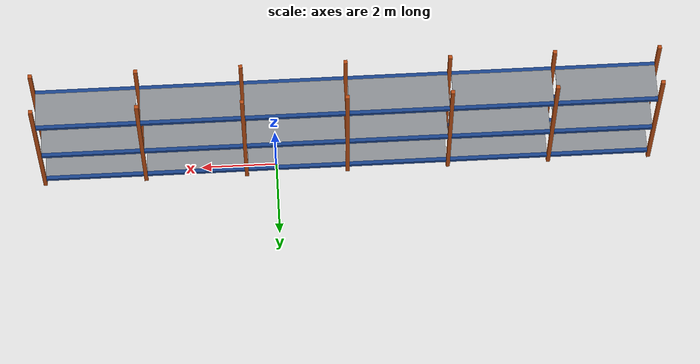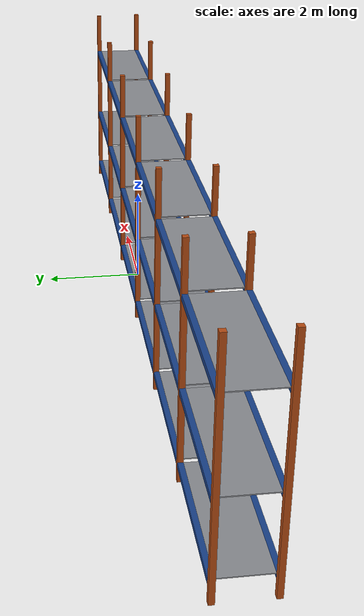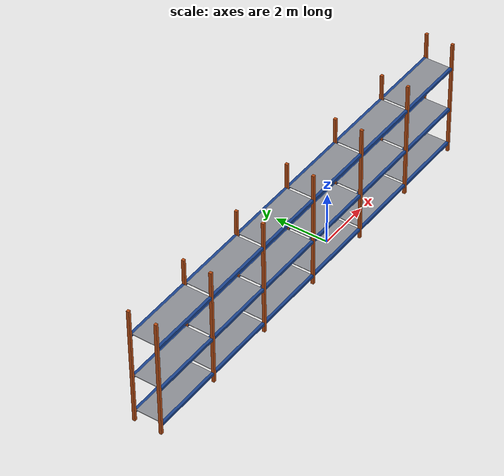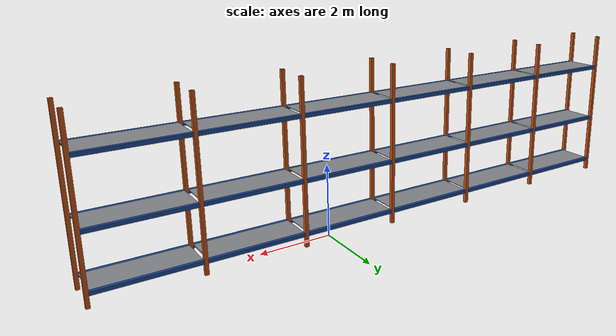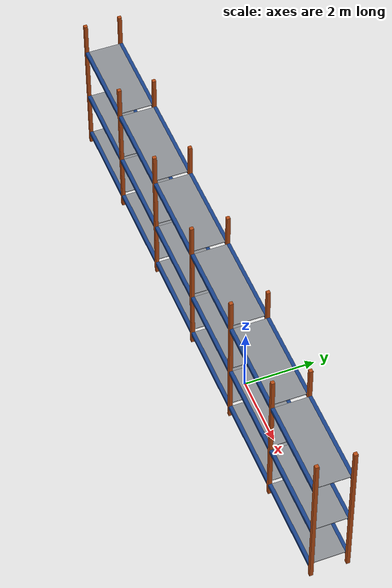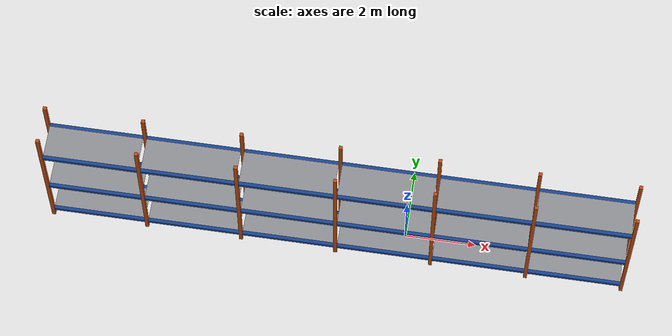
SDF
<sdf version="1.9">
 <world name="warehouse">
  <model name="rack_C">
   <static>true</static>
   <link name="frame">
    <visual name="up_0_f_v">
     <pose>-10 -0.75 2.25 0 0 0</pose>
     <geometry><box><size>0.1 0.1 4.5</size></box></geometry>
     <material>
      <ambient>0.36 0.15 0.04 1</ambient>
      <diffuse>0.72 0.3 0.08 1</diffuse>
      <specular>0.05 0.05 0.05 1</specular>
      <pbr><metal><metalness>0.0</metalness><roughness>0.9</roughness></metal></pbr>
     </material>
    </visual>
    <collision name="up_0_f_c">
     <pose>-10 -0.75 2.25 0 0 0</pose>
     <geometry><box><size>0.1 0.1 4.5</size></box></geometry>
    </collision>
    <visual name="up_0_b_v">
     <pose>-10 0.25 2.25 0 0 0</pose>
     <geometry><box><size>0.1 0.1 4.5</size></box></geometry>
     <material>
      <ambient>0.36 0.15 0.04 1</ambient>
      <diffuse>0.72 0.3 0.08 1</diffuse>
      <specular>0.05 0.05 0.05 1</specular>
      <pbr><metal><metalness>0.0</metalness><roughness>0.9</roughness></metal></pbr>
     </material>
    </visual>
    <collision name="up_0_b_c">
     <pose>-10 0.25 2.25 0 0 0</pose>
     <geometry><box><size>0.1 0.1 4.5</size></box></geometry>
    </collision>
    <visual name="up_1_f_v">
     <pose>-7.3 -0.75 2.25 0 0 0</pose>
     <geometry><box><size>0.1 0.1 4.5</size></box></geometry>
     <material>
      <ambient>0.36 0.15 0.04 1</ambient>
      <diffuse>0.72 0.3 0.08 1</diffuse>
      <specular>0.05 0.05 0.05 1</specular>
      <pbr><metal><metalness>0.0</metalness><roughness>0.9</roughness></metal></pbr>
     </material>
    </visual>
    <collision name="up_1_f_c">
     <pose>-7.3 -0.75 2.25 0 0 0</pose>
     <geometry><box><size>0.1 0.1 4.5</size></box></geometry>
    </collision>
    <visual name="up_1_b_v">
     <pose>-7.3 0.25 2.25 0 0 0</pose>
     <geometry><box><size>0.1 0.1 4.5</size></box></geometry>
     <material>
      <ambient>0.36 0.15 0.04 1</ambient>
      <diffuse>0.72 0.3 0.08 1</diffuse>
      <specular>0.05 0.05 0.05 1</specular>
      <pbr><metal><metalness>0.0</metalness><roughness>0.9</roughness></metal></pbr>
     </material>
    </visual>
    <collision name="up_1_b_c">
     <pose>-7.3 0.25 2.25 0 0 0</pose>
     <geometry><box><size>0.1 0.1 4.5</size></box></geometry>
    </collision>
    <visual name="up_2_f_v">
     <pose>-4.6 -0.75 2.25 0 0 0</pose>
     <geometry><box><size>0.1 0.1 4.5</size></box></geometry>
     <material>
      <ambient>0.36 0.15 0.04 1</ambient>
      <diffuse>0.72 0.3 0.08 1</diffuse>
      <specular>0.05 0.05 0.05 1</specular>
      <pbr><metal><metalness>0.0</metalness><roughness>0.9</roughness></metal></pbr>
     </material>
    </visual>
    <collision name="up_2_f_c">
     <pose>-4.6 -0.75 2.25 0 0 0</pose>
     <geometry><box><size>0.1 0.1 4.5</size></box></geometry>
    </collision>
    <visual name="up_2_b_v">
     <pose>-4.6 0.25 2.25 0 0 0</pose>
     <geometry><box><size>0.1 0.1 4.5</size></box></geometry>
     <material>
      <ambient>0.36 0.15 0.04 1</ambient>
      <diffuse>0.72 0.3 0.08 1</diffuse>
      <specular>0.05 0.05 0.05 1</specular>
      <pbr><metal><metalness>0.0</metalness><roughness>0.9</roughness></metal></pbr>
     </material>
    </visual>
    <collision name="up_2_b_c">
     <pose>-4.6 0.25 2.25 0 0 0</pose>
     <geometry><box><size>0.1 0.1 4.5</size></box></geometry>
    </collision>
    <visual name="up_3_f_v">
     <pose>-1.9 -0.75 2.25 0 0 0</pose>
     <geometry><box><size>0.1 0.1 4.5</size></box></geometry>
     <material>
      <ambient>0.36 0.15 0.04 1</ambient>
      <diffuse>0.72 0.3 0.08 1</diffuse>
      <specular>0.05 0.05 0.05 1</specular>
      <pbr><metal><metalness>0.0</metalness><roughness>0.9</roughness></metal></pbr>
     </material>
    </visual>
    <collision name="up_3_f_c">
     <pose>-1.9 -0.75 2.25 0 0 0</pose>
     <geometry><box><size>0.1 0.1 4.5</size></box></geometry>
    </collision>
    <visual name="up_3_b_v">
     <pose>-1.9 0.25 2.25 0 0 0</pose>
     <geometry><box><size>0.1 0.1 4.5</size></box></geometry>
     <material>
      <ambient>0.36 0.15 0.04 1</ambient>
      <diffuse>0.72 0.3 0.08 1</diffuse>
      <specular>0.05 0.05 0.05 1</specular>
      <pbr><metal><metalness>0.0</metalness><roughness>0.9</roughness></metal></pbr>
     </material>
    </visual>
    <collision name="up_3_b_c">
     <pose>-1.9 0.25 2.25 0 0 0</pose>
     <geometry><box><size>0.1 0.1 4.5</size></box></geometry>
    </collision>
    <visual name="up_4_f_v">
     <pose>0.8 -0.75 2.25 0 0 0</pose>
     <geometry><box><size>0.1 0.1 4.5</size></box></geometry>
     <material>
      <ambient>0.36 0.15 0.04 1</ambient>
      <diffuse>0.72 0.3 0.08 1</diffuse>
      <specular>0.05 0.05 0.05 1</specular>
      <pbr><metal><metalness>0.0</metalness><roughness>0.9</roughness></metal></pbr>
     </material>
    </visual>
    <collision name="up_4_f_c">
     <pose>0.8 -0.75 2.25 0 0 0</pose>
     <geometry><box><size>0.1 0.1 4.5</size></box></geometry>
    </collision>
    <visual name="up_4_b_v">
     <pose>0.8 0.25 2.25 0 0 0</pose>
     <geometry><box><size>0.1 0.1 4.5</size></box></geometry>
     <material>
      <ambient>0.36 0.15 0.04 1</ambient>
      <diffuse>0.72 0.3 0.08 1</diffuse>
      <specular>0.05 0.05 0.05 1</specular>
      <pbr><metal><metalness>0.0</metalness><roughness>0.9</roughness></metal></pbr>
     </material>
    </visual>
    <collision name="up_4_b_c">
     <pose>0.8 0.25 2.25 0 0 0</pose>
     <geometry><box><size>0.1 0.1 4.5</size></box></geometry>
    </collision>
    <visual name="up_5_f_v">
     <pose>3.5 -0.75 2.25 0 0 0</pose>
     <geometry><box><size>0.1 0.1 4.5</size></box></geometry>
     <material>
      <ambient>0.36 0.15 0.04 1</ambient>
      <diffuse>0.72 0.3 0.08 1</diffuse>
      <specular>0.05 0.05 0.05 1</specular>
      <pbr><metal><metalness>0.0</metalness><roughness>0.9</roughness></metal></pbr>
     </material>
    </visual>
    <collision name="up_5_f_c">
     <pose>3.5 -0.75 2.25 0 0 0</pose>
     <geometry><box><size>0.1 0.1 4.5</size></box></geometry>
    </collision>
    <visual name="up_5_b_v">
     <pose>3.5 0.25 2.25 0 0 0</pose>
     <geometry><box><size>0.1 0.1 4.5</size></box></geometry>
     <material>
      <ambient>0.36 0.15 0.04 1</ambient>
      <diffuse>0.72 0.3 0.08 1</diffuse>
      <specular>0.05 0.05 0.05 1</specular>
      <pbr><metal><metalness>0.0</metalness><roughness>0.9</roughness></metal></pbr>
     </material>
    </visual>
    <collision name="up_5_b_c">
     <pose>3.5 0.25 2.25 0 0 0</pose>
     <geometry><box><size>0.1 0.1 4.5</size></box></geometry>
    </collision>
    <visual name="up_6_f_v">
     <pose>6.2 -0.75 2.25 0 0 0</pose>
     <geometry><box><size>0.1 0.1 4.5</size></box></geometry>
     <material>
      <ambient>0.36 0.15 0.04 1</ambient>
      <diffuse>0.72 0.3 0.08 1</diffuse>
      <specular>0.05 0.05 0.05 1</specular>
      <pbr><metal><metalness>0.0</metalness><roughness>0.9</roughness></metal></pbr>
     </material>
    </visual>
    <collision name="up_6_f_c">
     <pose>6.2 -0.75 2.25 0 0 0</pose>
     <geometry><box><size>0.1 0.1 4.5</size></box></geometry>
    </collision>
    <visual name="up_6_b_v">
     <pose>6.2 0.25 2.25 0 0 0</pose>
     <geometry><box><size>0.1 0.1 4.5</size></box></geometry>
     <material>
      <ambient>0.36 0.15 0.04 1</ambient>
      <diffuse>0.72 0.3 0.08 1</diffuse>
      <specular>0.05 0.05 0.05 1</specular>
      <pbr><metal><metalness>0.0</metalness><roughness>0.9</roughness></metal></pbr>
     </material>
    </visual>
    <collision name="up_6_b_c">
     <pose>6.2 0.25 2.25 0 0 0</pose>
     <geometry><box><size>0.1 0.1 4.5</size></box></geometry>
    </collision>
    <visual name="beam_0_0_f_v">
     <pose>-8.65 -0.75 0.35 0 0 0</pose>
     <geometry><box><size>2.6 0.1 0.1</size></box></geometry>
     <material>
      <ambient>0.05 0.13 0.275 1</ambient>
      <diffuse>0.1 0.26 0.55 1</diffuse>
      <specular>0.05 0.05 0.05 1</specular>
      <pbr><metal><metalness>0.0</metalness><roughness>0.9</roughness></metal></pbr>
     </material>
    </visual>
    <collision name="beam_0_0_f_c">
     <pose>-8.65 -0.75 0.35 0 0 0</pose>
     <geometry><box><size>2.6 0.1 0.1</size></box></geometry>
    </collision>
    <visual name="beam_0_0_b_v">
     <pose>-8.65 0.25 0.35 0 0 0</pose>
     <geometry><box><size>2.6 0.1 0.1</size></box></geometry>
     <material>
      <ambient>0.05 0.13 0.275 1</ambient>
      <diffuse>0.1 0.26 0.55 1</diffuse>
      <specular>0.05 0.05 0.05 1</specular>
      <pbr><metal><metalness>0.0</metalness><roughness>0.9</roughness></metal></pbr>
     </material>
    </visual>
    <collision name="beam_0_0_b_c">
     <pose>-8.65 0.25 0.35 0 0 0</pose>
     <geometry><box><size>2.6 0.1 0.1</size></box></geometry>
    </collision>
    <visual name="deck_0_0_v">
     <pose>-8.65 -0.25 0.39 0 0 0</pose>
     <geometry><box><size>2.6 0.9 0.02</size></box></geometry>
     <material>
      <ambient>0.275 0.28 0.29 1</ambient>
      <diffuse>0.55 0.56 0.58 1</diffuse>
      <specular>0.05 0.05 0.05 1</specular>
      <pbr><metal><metalness>0.0</metalness><roughness>0.9</roughness></metal></pbr>
     </material>
    </visual>
    <collision name="deck_0_0_c">
     <pose>-8.65 -0.25 0.39 0 0 0</pose>
     <geometry><box><size>2.6 0.9 0.02</size></box></geometry>
    </collision>
    <visual name="beam_0_1_f_v">
     <pose>-5.95 -0.75 0.35 0 0 0</pose>
     <geometry><box><size>2.6 0.1 0.1</size></box></geometry>
     <material>
      <ambient>0.05 0.13 0.275 1</ambient>
      <diffuse>0.1 0.26 0.55 1</diffuse>
      <specular>0.05 0.05 0.05 1</specular>
      <pbr><metal><metalness>0.0</metalness><roughness>0.9</roughness></metal></pbr>
     </material>
    </visual>
    <collision name="beam_0_1_f_c">
     <pose>-5.95 -0.75 0.35 0 0 0</pose>
     <geometry><box><size>2.6 0.1 0.1</size></box></geometry>
    </collision>
    <visual name="beam_0_1_b_v">
     <pose>-5.95 0.25 0.35 0 0 0</pose>
     <geometry><box><size>2.6 0.1 0.1</size></box></geometry>
     <material>
      <ambient>0.05 0.13 0.275 1</ambient>
      <diffuse>0.1 0.26 0.55 1</diffuse>
      <specular>0.05 0.05 0.05 1</specular>
      <pbr><metal><metalness>0.0</metalness><roughness>0.9</roughness></metal></pbr>
     </material>
    </visual>
    <collision name="beam_0_1_b_c">
     <pose>-5.95 0.25 0.35 0 0 0</pose>
     <geometry><box><size>2.6 0.1 0.1</size></box></geometry>
    </collision>
    <visual name="deck_0_1_v">
     <pose>-5.95 -0.25 0.39 0 0 0</pose>
     <geometry><box><size>2.6 0.9 0.02</size></box></geometry>
     <material>
      <ambient>0.275 0.28 0.29 1</ambient>
      <diffuse>0.55 0.56 0.58 1</diffuse>
      <specular>0.05 0.05 0.05 1</specular>
      <pbr><metal><metalness>0.0</metalness><roughness>0.9</roughness></metal></pbr>
     </material>
    </visual>
    <collision name="deck_0_1_c">
     <pose>-5.95 -0.25 0.39 0 0 0</pose>
     <geometry><box><size>2.6 0.9 0.02</size></box></geometry>
    </collision>
    <visual name="beam_0_2_f_v">
     <pose>-3.25 -0.75 0.35 0 0 0</pose>
     <geometry><box><size>2.6 0.1 0.1</size></box></geometry>
     <material>
      <ambient>0.05 0.13 0.275 1</ambient>
      <diffuse>0.1 0.26 0.55 1</diffuse>
      <specular>0.05 0.05 0.05 1</specular>
      <pbr><metal><metalness>0.0</metalness><roughness>0.9</roughness></metal></pbr>
     </material>
    </visual>
    <collision name="beam_0_2_f_c">
     <pose>-3.25 -0.75 0.35 0 0 0</pose>
     <geometry><box><size>2.6 0.1 0.1</size></box></geometry>
    </collision>
    <visual name="beam_0_2_b_v">
     <pose>-3.25 0.25 0.35 0 0 0</pose>
     <geometry><box><size>2.6 0.1 0.1</size></box></geometry>
     <material>
      <ambient>0.05 0.13 0.275 1</ambient>
      <diffuse>0.1 0.26 0.55 1</diffuse>
      <specular>0.05 0.05 0.05 1</specular>
      <pbr><metal><metalness>0.0</metalness><roughness>0.9</roughness></metal></pbr>
     </material>
    </visual>
    <collision name="beam_0_2_b_c">
     <pose>-3.25 0.25 0.35 0 0 0</pose>
     <geometry><box><size>2.6 0.1 0.1</size></box></geometry>
    </collision>
    <visual name="deck_0_2_v">
     <pose>-3.25 -0.25 0.39 0 0 0</pose>
     <geometry><box><size>2.6 0.9 0.02</size></box></geometry>
     <material>
      <ambient>0.275 0.28 0.29 1</ambient>
      <diffuse>0.55 0.56 0.58 1</diffuse>
      <specular>0.05 0.05 0.05 1</specular>
      <pbr><metal><metalness>0.0</metalness><roughness>0.9</roughness></metal></pbr>
     </material>
    </visual>
    <collision name="deck_0_2_c">
     <pose>-3.25 -0.25 0.39 0 0 0</pose>
     <geometry><box><size>2.6 0.9 0.02</size></box></geometry>
    </collision>
    <visual name="beam_0_3_f_v">
     <pose>-0.55 -0.75 0.35 0 0 0</pose>
     <geometry><box><size>2.6 0.1 0.1</size></box></geometry>
     <material>
      <ambient>0.05 0.13 0.275 1</ambient>
      <diffuse>0.1 0.26 0.55 1</diffuse>
      <specular>0.05 0.05 0.05 1</specular>
      <pbr><metal><metalness>0.0</metalness><roughness>0.9</roughness></metal></pbr>
     </material>
    </visual>
    <collision name="beam_0_3_f_c">
     <pose>-0.55 -0.75 0.35 0 0 0</pose>
     <geometry><box><size>2.6 0.1 0.1</size></box></geometry>
    </collision>
    <visual name="beam_0_3_b_v">
     <pose>-0.55 0.25 0.35 0 0 0</pose>
     <geometry><box><size>2.6 0.1 0.1</size></box></geometry>
     <material>
      <ambient>0.05 0.13 0.275 1</ambient>
      <diffuse>0.1 0.26 0.55 1</diffuse>
      <specular>0.05 0.05 0.05 1</specular>
      <pbr><metal><metalness>0.0</metalness><roughness>0.9</roughness></metal></pbr>
     </material>
    </visual>
    <collision name="beam_0_3_b_c">
     <pose>-0.55 0.25 0.35 0 0 0</pose>
     <geometry><box><size>2.6 0.1 0.1</size></box></geometry>
    </collision>
    <visual name="deck_0_3_v">
     <pose>-0.55 -0.25 0.39 0 0 0</pose>
     <geometry><box><size>2.6 0.9 0.02</size></box></geometry>
     <material>
      <ambient>0.275 0.28 0.29 1</ambient>
      <diffuse>0.55 0.56 0.58 1</diffuse>
      <specular>0.05 0.05 0.05 1</specular>
      <pbr><metal><metalness>0.0</metalness><roughness>0.9</roughness></metal></pbr>
     </material>
    </visual>
    <collision name="deck_0_3_c">
     <pose>-0.55 -0.25 0.39 0 0 0</pose>
     <geometry><box><size>2.6 0.9 0.02</size></box></geometry>
    </collision>
    <visual name="beam_0_4_f_v">
     <pose>2.15 -0.75 0.35 0 0 0</pose>
     <geometry><box><size>2.6 0.1 0.1</size></box></geometry>
     <material>
      <ambient>0.05 0.13 0.275 1</ambient>
      <diffuse>0.1 0.26 0.55 1</diffuse>
      <specular>0.05 0.05 0.05 1</specular>
      <pbr><metal><metalness>0.0</metalness><roughness>0.9</roughness></metal></pbr>
     </material>
    </visual>
    <collision name="beam_0_4_f_c">
     <pose>2.15 -0.75 0.35 0 0 0</pose>
     <geometry><box><size>2.6 0.1 0.1</size></box></geometry>
    </collision>
    <visual name="beam_0_4_b_v">
     <pose>2.15 0.25 0.35 0 0 0</pose>
     <geometry><box><size>2.6 0.1 0.1</size></box></geometry>
     <material>
      <ambient>0.05 0.13 0.275 1</ambient>
      <diffuse>0.1 0.26 0.55 1</diffuse>
      <specular>0.05 0.05 0.05 1</specular>
      <pbr><metal><metalness>0.0</metalness><roughness>0.9</roughness></metal></pbr>
     </material>
    </visual>
    <collision name="beam_0_4_b_c">
     <pose>2.15 0.25 0.35 0 0 0</pose>
     <geometry><box><size>2.6 0.1 0.1</size></box></geometry>
    </collision>
    <visual name="deck_0_4_v">
     <pose>2.15 -0.25 0.39 0 0 0</pose>
     <geometry><box><size>2.6 0.9 0.02</size></box></geometry>
     <material>
      <ambient>0.275 0.28 0.29 1</ambient>
      <diffuse>0.55 0.56 0.58 1</diffuse>
      <specular>0.05 0.05 0.05 1</specular>
      <pbr><metal><metalness>0.0</metalness><roughness>0.9</roughness></metal></pbr>
     </material>
    </visual>
    <collision name="deck_0_4_c">
     <pose>2.15 -0.25 0.39 0 0 0</pose>
     <geometry><box><size>2.6 0.9 0.02</size></box></geometry>
    </collision>
    <visual name="beam_0_5_f_v">
     <pose>4.85 -0.75 0.35 0 0 0</pose>
     <geometry><box><size>2.6 0.1 0.1</size></box></geometry>
     <material>
      <ambient>0.05 0.13 0.275 1</ambient>
      <diffuse>0.1 0.26 0.55 1</diffuse>
      <specular>0.05 0.05 0.05 1</specular>
      <pbr><metal><metalness>0.0</metalness><roughness>0.9</roughness></metal></pbr>
     </material>
    </visual>
    <collision name="beam_0_5_f_c">
     <pose>4.85 -0.75 0.35 0 0 0</pose>
     <geometry><box><size>2.6 0.1 0.1</size></box></geometry>
    </collision>
    <visual name="beam_0_5_b_v">
     <pose>4.85 0.25 0.35 0 0 0</pose>
     <geometry><box><size>2.6 0.1 0.1</size></box></geometry>
     <material>
      <ambient>0.05 0.13 0.275 1</ambient>
      <diffuse>0.1 0.26 0.55 1</diffuse>
      <specular>0.05 0.05 0.05 1</specular>
      <pbr><metal><metalness>0.0</metalness><roughness>0.9</roughness></metal></pbr>
     </material>
    </visual>
    <collision name="beam_0_5_b_c">
     <pose>4.85 0.25 0.35 0 0 0</pose>
     <geometry><box><size>2.6 0.1 0.1</size></box></geometry>
    </collision>
    <visual name="deck_0_5_v">
     <pose>4.85 -0.25 0.39 0 0 0</pose>
     <geometry><box><size>2.6 0.9 0.02</size></box></geometry>
     <material>
      <ambient>0.275 0.28 0.29 1</ambient>
      <diffuse>0.55 0.56 0.58 1</diffuse>
      <specular>0.05 0.05 0.05 1</specular>
      <pbr><metal><metalness>0.0</metalness><roughness>0.9</roughness></metal></pbr>
     </material>
    </visual>
    <collision name="deck_0_5_c">
     <pose>4.85 -0.25 0.39 0 0 0</pose>
     <geometry><box><size>2.6 0.9 0.02</size></box></geometry>
    </collision>
    <visual name="beam_1_0_f_v">
     <pose>-8.65 -0.75 1.8 0 0 0</pose>
     <geometry><box><size>2.6 0.1 0.1</size></box></geometry>
     <material>
      <ambient>0.05 0.13 0.275 1</ambient>
      <diffuse>0.1 0.26 0.55 1</diffuse>
      <specular>0.05 0.05 0.05 1</specular>
      <pbr><metal><metalness>0.0</metalness><roughness>0.9</roughness></metal></pbr>
     </material>
    </visual>
    <collision name="beam_1_0_f_c">
     <pose>-8.65 -0.75 1.8 0 0 0</pose>
     <geometry><box><size>2.6 0.1 0.1</size></box></geometry>
    </collision>
    <visual name="beam_1_0_b_v">
     <pose>-8.65 0.25 1.8 0 0 0</pose>
     <geometry><box><size>2.6 0.1 0.1</size></box></geometry>
     <material>
      <ambient>0.05 0.13 0.275 1</ambient>
      <diffuse>0.1 0.26 0.55 1</diffuse>
      <specular>0.05 0.05 0.05 1</specular>
      <pbr><metal><metalness>0.0</metalness><roughness>0.9</roughness></metal></pbr>
     </material>
    </visual>
    <collision name="beam_1_0_b_c">
     <pose>-8.65 0.25 1.8 0 0 0</pose>
     <geometry><box><size>2.6 0.1 0.1</size></box></geometry>
    </collision>
    <visual name="deck_1_0_v">
     <pose>-8.65 -0.25 1.84 0 0 0</pose>
     <geometry><box><size>2.6 0.9 0.02</size></box></geometry>
     <material>
      <ambient>0.275 0.28 0.29 1</ambient>
      <diffuse>0.55 0.56 0.58 1</diffuse>
      <specular>0.05 0.05 0.05 1</specular>
      <pbr><metal><metalness>0.0</metalness><roughness>0.9</roughness></metal></pbr>
     </material>
    </visual>
    <collision name="deck_1_0_c">
     <pose>-8.65 -0.25 1.84 0 0 0</pose>
     <geometry><box><size>2.6 0.9 0.02</size></box></geometry>
    </collision>
    <visual name="beam_1_1_f_v">
     <pose>-5.95 -0.75 1.8 0 0 0</pose>
     <geometry><box><size>2.6 0.1 0.1</size></box></geometry>
     <material>
      <ambient>0.05 0.13 0.275 1</ambient>
      <diffuse>0.1 0.26 0.55 1</diffuse>
      <specular>0.05 0.05 0.05 1</specular>
      <pbr><metal><metalness>0.0</metalness><roughness>0.9</roughness></metal></pbr>
     </material>
    </visual>
    <collision name="beam_1_1_f_c">
     <pose>-5.95 -0.75 1.8 0 0 0</pose>
     <geometry><box><size>2.6 0.1 0.1</size></box></geometry>
    </collision>
    <visual name="beam_1_1_b_v">
     <pose>-5.95 0.25 1.8 0 0 0</pose>
     <geometry><box><size>2.6 0.1 0.1</size></box></geometry>
     <material>
      <ambient>0.05 0.13 0.275 1</ambient>
      <diffuse>0.1 0.26 0.55 1</diffuse>
      <specular>0.05 0.05 0.05 1</specular>
      <pbr><metal><metalness>0.0</metalness><roughness>0.9</roughness></metal></pbr>
     </material>
    </visual>
    <collision name="beam_1_1_b_c">
     <pose>-5.95 0.25 1.8 0 0 0</pose>
     <geometry><box><size>2.6 0.1 0.1</size></box></geometry>
    </collision>
    <visual name="deck_1_1_v">
     <pose>-5.95 -0.25 1.84 0 0 0</pose>
     <geometry><box><size>2.6 0.9 0.02</size></box></geometry>
     <material>
      <ambient>0.275 0.28 0.29 1</ambient>
      <diffuse>0.55 0.56 0.58 1</diffuse>
      <specular>0.05 0.05 0.05 1</specular>
      <pbr><metal><metalness>0.0</metalness><roughness>0.9</roughness></metal></pbr>
     </material>
    </visual>
    <collision name="deck_1_1_c">
     <pose>-5.95 -0.25 1.84 0 0 0</pose>
     <geometry><box><size>2.6 0.9 0.02</size></box></geometry>
    </collision>
    <visual name="beam_1_2_f_v">
     <pose>-3.25 -0.75 1.8 0 0 0</pose>
     <geometry><box><size>2.6 0.1 0.1</size></box></geometry>
     <material>
      <ambient>0.05 0.13 0.275 1</ambient>
      <diffuse>0.1 0.26 0.55 1</diffuse>
      <specular>0.05 0.05 0.05 1</specular>
      <pbr><metal><metalness>0.0</metalness><roughness>0.9</roughness></metal></pbr>
     </material>
    </visual>
    <collision name="beam_1_2_f_c">
     <pose>-3.25 -0.75 1.8 0 0 0</pose>
     <geometry><box><size>2.6 0.1 0.1</size></box></geometry>
    </collision>
    <visual name="beam_1_2_b_v">
     <pose>-3.25 0.25 1.8 0 0 0</pose>
     <geometry><box><size>2.6 0.1 0.1</size></box></geometry>
     <material>
      <ambient>0.05 0.13 0.275 1</ambient>
      <diffuse>0.1 0.26 0.55 1</diffuse>
      <specular>0.05 0.05 0.05 1</specular>
      <pbr><metal><metalness>0.0</metalness><roughness>0.9</roughness></metal></pbr>
     </material>
    </visual>
    <collision name="beam_1_2_b_c">
     <pose>-3.25 0.25 1.8 0 0 0</pose>
     <geometry><box><size>2.6 0.1 0.1</size></box></geometry>
    </collision>
    <visual name="deck_1_2_v">
     <pose>-3.25 -0.25 1.84 0 0 0</pose>
     <geometry><box><size>2.6 0.9 0.02</size></box></geometry>
     <material>
      <ambient>0.275 0.28 0.29 1</ambient>
      <diffuse>0.55 0.56 0.58 1</diffuse>
      <specular>0.05 0.05 0.05 1</specular>
      <pbr><metal><metalness>0.0</metalness><roughness>0.9</roughness></metal></pbr>
     </material>
    </visual>
    <collision name="deck_1_2_c">
     <pose>-3.25 -0.25 1.84 0 0 0</pose>
     <geometry><box><size>2.6 0.9 0.02</size></box></geometry>
    </collision>
    <visual name="beam_1_3_f_v">
     <pose>-0.55 -0.75 1.8 0 0 0</pose>
     <geometry><box><size>2.6 0.1 0.1</size></box></geometry>
     <material>
      <ambient>0.05 0.13 0.275 1</ambient>
      <diffuse>0.1 0.26 0.55 1</diffuse>
      <specular>0.05 0.05 0.05 1</specular>
      <pbr><metal><metalness>0.0</metalness><roughness>0.9</roughness></metal></pbr>
     </material>
    </visual>
    <collision name="beam_1_3_f_c">
     <pose>-0.55 -0.75 1.8 0 0 0</pose>
     <geometry><box><size>2.6 0.1 0.1</size></box></geometry>
    </collision>
    <visual name="beam_1_3_b_v">
     <pose>-0.55 0.25 1.8 0 0 0</pose>
     <geometry><box><size>2.6 0.1 0.1</size></box></geometry>
     <material>
      <ambient>0.05 0.13 0.275 1</ambient>
      <diffuse>0.1 0.26 0.55 1</diffuse>
      <specular>0.05 0.05 0.05 1</specular>
      <pbr><metal><metalness>0.0</metalness><roughness>0.9</roughness></metal></pbr>
     </material>
    </visual>
    <collision name="beam_1_3_b_c">
     <pose>-0.55 0.25 1.8 0 0 0</pose>
     <geometry><box><size>2.6 0.1 0.1</size></box></geometry>
    </collision>
    <visual name="deck_1_3_v">
     <pose>-0.55 -0.25 1.84 0 0 0</pose>
     <geometry><box><size>2.6 0.9 0.02</size></box></geometry>
     <material>
      <ambient>0.275 0.28 0.29 1</ambient>
      <diffuse>0.55 0.56 0.58 1</diffuse>
      <specular>0.05 0.05 0.05 1</specular>
      <pbr><metal><metalness>0.0</metalness><roughness>0.9</roughness></metal></pbr>
     </material>
    </visual>
    <collision name="deck_1_3_c">
     <pose>-0.55 -0.25 1.84 0 0 0</pose>
     <geometry><box><size>2.6 0.9 0.02</size></box></geometry>
    </collision>
    <visual name="beam_1_4_f_v">
     <pose>2.15 -0.75 1.8 0 0 0</pose>
     <geometry><box><size>2.6 0.1 0.1</size></box></geometry>
     <material>
      <ambient>0.05 0.13 0.275 1</ambient>
      <diffuse>0.1 0.26 0.55 1</diffuse>
      <specular>0.05 0.05 0.05 1</specular>
      <pbr><metal><metalness>0.0</metalness><roughness>0.9</roughness></metal></pbr>
     </material>
    </visual>
    <collision name="beam_1_4_f_c">
     <pose>2.15 -0.75 1.8 0 0 0</pose>
     <geometry><box><size>2.6 0.1 0.1</size></box></geometry>
    </collision>
    <visual name="beam_1_4_b_v">
     <pose>2.15 0.25 1.8 0 0 0</pose>
     <geometry><box><size>2.6 0.1 0.1</size></box></geometry>
     <material>
      <ambient>0.05 0.13 0.275 1</ambient>
      <diffuse>0.1 0.26 0.55 1</diffuse>
      <specular>0.05 0.05 0.05 1</specular>
      <pbr><metal><metalness>0.0</metalness><roughness>0.9</roughness></metal></pbr>
     </material>
    </visual>
    <collision name="beam_1_4_b_c">
     <pose>2.15 0.25 1.8 0 0 0</pose>
     <geometry><box><size>2.6 0.1 0.1</size></box></geometry>
    </collision>
    <visual name="deck_1_4_v">
     <pose>2.15 -0.25 1.84 0 0 0</pose>
     <geometry><box><size>2.6 0.9 0.02</size></box></geometry>
     <material>
      <ambient>0.275 0.28 0.29 1</ambient>
      <diffuse>0.55 0.56 0.58 1</diffuse>
      <specular>0.05 0.05 0.05 1</specular>
      <pbr><metal><metalness>0.0</metalness><roughness>0.9</roughness></metal></pbr>
     </material>
    </visual>
    <collision name="deck_1_4_c">
     <pose>2.15 -0.25 1.84 0 0 0</pose>
     <geometry><box><size>2.6 0.9 0.02</size></box></geometry>
    </collision>
    <visual name="beam_1_5_f_v">
     <pose>4.85 -0.75 1.8 0 0 0</pose>
     <geometry><box><size>2.6 0.1 0.1</size></box></geometry>
     <material>
      <ambient>0.05 0.13 0.275 1</ambient>
      <diffuse>0.1 0.26 0.55 1</diffuse>
      <specular>0.05 0.05 0.05 1</specular>
      <pbr><metal><metalness>0.0</metalness><roughness>0.9</roughness></metal></pbr>
     </material>
    </visual>
    <collision name="beam_1_5_f_c">
     <pose>4.85 -0.75 1.8 0 0 0</pose>
     <geometry><box><size>2.6 0.1 0.1</size></box></geometry>
    </collision>
    <visual name="beam_1_5_b_v">
     <pose>4.85 0.25 1.8 0 0 0</pose>
     <geometry><box><size>2.6 0.1 0.1</size></box></geometry>
     <material>
      <ambient>0.05 0.13 0.275 1</ambient>
      <diffuse>0.1 0.26 0.55 1</diffuse>
      <specular>0.05 0.05 0.05 1</specular>
      <pbr><metal><metalness>0.0</metalness><roughness>0.9</roughness></metal></pbr>
     </material>
    </visual>
    <collision name="beam_1_5_b_c">
     <pose>4.85 0.25 1.8 0 0 0</pose>
     <geometry><box><size>2.6 0.1 0.1</size></box></geometry>
    </collision>
    <visual name="deck_1_5_v">
     <pose>4.85 -0.25 1.84 0 0 0</pose>
     <geometry><box><size>2.6 0.9 0.02</size></box></geometry>
     <material>
      <ambient>0.275 0.28 0.29 1</ambient>
      <diffuse>0.55 0.56 0.58 1</diffuse>
      <specular>0.05 0.05 0.05 1</specular>
      <pbr><metal><metalness>0.0</metalness><roughness>0.9</roughness></metal></pbr>
     </material>
    </visual>
    <collision name="deck_1_5_c">
     <pose>4.85 -0.25 1.84 0 0 0</pose>
     <geometry><box><size>2.6 0.9 0.02</size></box></geometry>
    </collision>
    <visual name="beam_2_0_f_v">
     <pose>-8.65 -0.75 3.5 0 0 0</pose>
     <geometry><box><size>2.6 0.1 0.1</size></box></geometry>
     <material>
      <ambient>0.05 0.13 0.275 1</ambient>
      <diffuse>0.1 0.26 0.55 1</diffuse>
      <specular>0.05 0.05 0.05 1</specular>
      <pbr><metal><metalness>0.0</metalness><roughness>0.9</roughness></metal></pbr>
     </material>
    </visual>
    <collision name="beam_2_0_f_c">
     <pose>-8.65 -0.75 3.5 0 0 0</pose>
     <geometry><box><size>2.6 0.1 0.1</size></box></geometry>
    </collision>
    <visual name="beam_2_0_b_v">
     <pose>-8.65 0.25 3.5 0 0 0</pose>
     <geometry><box><size>2.6 0.1 0.1</size></box></geometry>
     <material>
      <ambient>0.05 0.13 0.275 1</ambient>
      <diffuse>0.1 0.26 0.55 1</diffuse>
      <specular>0.05 0.05 0.05 1</specular>
      <pbr><metal><metalness>0.0</metalness><roughness>0.9</roughness></metal></pbr>
     </material>
    </visual>
    <collision name="beam_2_0_b_c">
     <pose>-8.65 0.25 3.5 0 0 0</pose>
     <geometry><box><size>2.6 0.1 0.1</size></box></geometry>
    </collision>
    <visual name="deck_2_0_v">
     <pose>-8.65 -0.25 3.54 0 0 0</pose>
     <geometry><box><size>2.6 0.9 0.02</size></box></geometry>
     <material>
      <ambient>0.275 0.28 0.29 1</ambient>
      <diffuse>0.55 0.56 0.58 1</diffuse>
      <specular>0.05 0.05 0.05 1</specular>
      <pbr><metal><metalness>0.0</metalness><roughness>0.9</roughness></metal></pbr>
     </material>
    </visual>
    <collision name="deck_2_0_c">
     <pose>-8.65 -0.25 3.54 0 0 0</pose>
     <geometry><box><size>2.6 0.9 0.02</size></box></geometry>
    </collision>
    <visual name="beam_2_1_f_v">
     <pose>-5.95 -0.75 3.5 0 0 0</pose>
     <geometry><box><size>2.6 0.1 0.1</size></box></geometry>
     <material>
      <ambient>0.05 0.13 0.275 1</ambient>
      <diffuse>0.1 0.26 0.55 1</diffuse>
      <specular>0.05 0.05 0.05 1</specular>
      <pbr><metal><metalness>0.0</metalness><roughness>0.9</roughness></metal></pbr>
     </material>
    </visual>
    <collision name="beam_2_1_f_c">
     <pose>-5.95 -0.75 3.5 0 0 0</pose>
     <geometry><box><size>2.6 0.1 0.1</size></box></geometry>
    </collision>
    <visual name="beam_2_1_b_v">
     <pose>-5.95 0.25 3.5 0 0 0</pose>
     <geometry><box><size>2.6 0.1 0.1</size></box></geometry>
     <material>
      <ambient>0.05 0.13 0.275 1</ambient>
      <diffuse>0.1 0.26 0.55 1</diffuse>
      <specular>0.05 0.05 0.05 1</specular>
      <pbr><metal><metalness>0.0</metalness><roughness>0.9</roughness></metal></pbr>
     </material>
    </visual>
    <collision name="beam_2_1_b_c">
     <pose>-5.95 0.25 3.5 0 0 0</pose>
     <geometry><box><size>2.6 0.1 0.1</size></box></geometry>
    </collision>
    <visual name="deck_2_1_v">
     <pose>-5.95 -0.25 3.54 0 0 0</pose>
     <geometry><box><size>2.6 0.9 0.02</size></box></geometry>
     <material>
      <ambient>0.275 0.28 0.29 1</ambient>
      <diffuse>0.55 0.56 0.58 1</diffuse>
      <specular>0.05 0.05 0.05 1</specular>
      <pbr><metal><metalness>0.0</metalness><roughness>0.9</roughness></metal></pbr>
     </material>
    </visual>
    <collision name="deck_2_1_c">
     <pose>-5.95 -0.25 3.54 0 0 0</pose>
     <geometry><box><size>2.6 0.9 0.02</size></box></geometry>
    </collision>
    <visual name="beam_2_2_f_v">
     <pose>-3.25 -0.75 3.5 0 0 0</pose>
     <geometry><box><size>2.6 0.1 0.1</size></box></geometry>
     <material>
      <ambient>0.05 0.13 0.275 1</ambient>
      <diffuse>0.1 0.26 0.55 1</diffuse>
      <specular>0.05 0.05 0.05 1</specular>
      <pbr><metal><metalness>0.0</metalness><roughness>0.9</roughness></metal></pbr>
     </material>
    </visual>
    <collision name="beam_2_2_f_c">
     <pose>-3.25 -0.75 3.5 0 0 0</pose>
     <geometry><box><size>2.6 0.1 0.1</size></box></geometry>
    </collision>
    <visual name="beam_2_2_b_v">
     <pose>-3.25 0.25 3.5 0 0 0</pose>
     <geometry><box><size>2.6 0.1 0.1</size></box></geometry>
     <material>
      <ambient>0.05 0.13 0.275 1</ambient>
      <diffuse>0.1 0.26 0.55 1</diffuse>
      <specular>0.05 0.05 0.05 1</specular>
      <pbr><metal><metalness>0.0</metalness><roughness>0.9</roughness></metal></pbr>
     </material>
    </visual>
    <collision name="beam_2_2_b_c">
     <pose>-3.25 0.25 3.5 0 0 0</pose>
     <geometry><box><size>2.6 0.1 0.1</size></box></geometry>
    </collision>
    <visual name="deck_2_2_v">
     <pose>-3.25 -0.25 3.54 0 0 0</pose>
     <geometry><box><size>2.6 0.9 0.02</size></box></geometry>
     <material>
      <ambient>0.275 0.28 0.29 1</ambient>
      <diffuse>0.55 0.56 0.58 1</diffuse>
      <specular>0.05 0.05 0.05 1</specular>
      <pbr><metal><metalness>0.0</metalness><roughness>0.9</roughness></metal></pbr>
     </material>
    </visual>
    <collision name="deck_2_2_c">
     <pose>-3.25 -0.25 3.54 0 0 0</pose>
     <geometry><box><size>2.6 0.9 0.02</size></box></geometry>
    </collision>
    <visual name="beam_2_3_f_v">
     <pose>-0.55 -0.75 3.5 0 0 0</pose>
     <geometry><box><size>2.6 0.1 0.1</size></box></geometry>
     <material>
      <ambient>0.05 0.13 0.275 1</ambient>
      <diffuse>0.1 0.26 0.55 1</diffuse>
      <specular>0.05 0.05 0.05 1</specular>
      <pbr><metal><metalness>0.0</metalness><roughness>0.9</roughness></metal></pbr>
     </material>
    </visual>
    <collision name="beam_2_3_f_c">
     <pose>-0.55 -0.75 3.5 0 0 0</pose>
     <geometry><box><size>2.6 0.1 0.1</size></box></geometry>
    </collision>
    <visual name="beam_2_3_b_v">
     <pose>-0.55 0.25 3.5 0 0 0</pose>
     <geometry><box><size>2.6 0.1 0.1</size></box></geometry>
     <material>
      <ambient>0.05 0.13 0.275 1</ambient>
      <diffuse>0.1 0.26 0.55 1</diffuse>
      <specular>0.05 0.05 0.05 1</specular>
      <pbr><metal><metalness>0.0</metalness><roughness>0.9</roughness></metal></pbr>
     </material>
    </visual>
    <collision name="beam_2_3_b_c">
     <pose>-0.55 0.25 3.5 0 0 0</pose>
     <geometry><box><size>2.6 0.1 0.1</size></box></geometry>
    </collision>
    <visual name="deck_2_3_v">
     <pose>-0.55 -0.25 3.54 0 0 0</pose>
     <geometry><box><size>2.6 0.9 0.02</size></box></geometry>
     <material>
      <ambient>0.275 0.28 0.29 1</ambient>
      <diffuse>0.55 0.56 0.58 1</diffuse>
      <specular>0.05 0.05 0.05 1</specular>
      <pbr><metal><metalness>0.0</metalness><roughness>0.9</roughness></metal></pbr>
     </material>
    </visual>
    <collision name="deck_2_3_c">
     <pose>-0.55 -0.25 3.54 0 0 0</pose>
     <geometry><box><size>2.6 0.9 0.02</size></box></geometry>
    </collision>
    <visual name="beam_2_4_f_v">
     <pose>2.15 -0.75 3.5 0 0 0</pose>
     <geometry><box><size>2.6 0.1 0.1</size></box></geometry>
     <material>
      <ambient>0.05 0.13 0.275 1</ambient>
      <diffuse>0.1 0.26 0.55 1</diffuse>
      <specular>0.05 0.05 0.05 1</specular>
      <pbr><metal><metalness>0.0</metalness><roughness>0.9</roughness></metal></pbr>
     </material>
    </visual>
    <collision name="beam_2_4_f_c">
     <pose>2.15 -0.75 3.5 0 0 0</pose>
     <geometry><box><size>2.6 0.1 0.1</size></box></geometry>
    </collision>
    <visual name="beam_2_4_b_v">
     <pose>2.15 0.25 3.5 0 0 0</pose>
     <geometry><box><size>2.6 0.1 0.1</size></box></geometry>
     <material>
      <ambient>0.05 0.13 0.275 1</ambient>
      <diffuse>0.1 0.26 0.55 1</diffuse>
      <specular>0.05 0.05 0.05 1</specular>
      <pbr><metal><metalness>0.0</metalness><roughness>0.9</roughness></metal></pbr>
     </material>
    </visual>
    <collision name="beam_2_4_b_c">
     <pose>2.15 0.25 3.5 0 0 0</pose>
     <geometry><box><size>2.6 0.1 0.1</size></box></geometry>
    </collision>
    <visual name="deck_2_4_v">
     <pose>2.15 -0.25 3.54 0 0 0</pose>
     <geometry><box><size>2.6 0.9 0.02</size></box></geometry>
     <material>
      <ambient>0.275 0.28 0.29 1</ambient>
      <diffuse>0.55 0.56 0.58 1</diffuse>
      <specular>0.05 0.05 0.05 1</specular>
      <pbr><metal><metalness>0.0</metalness><roughness>0.9</roughness></metal></pbr>
     </material>
    </visual>
    <collision name="deck_2_4_c">
     <pose>2.15 -0.25 3.54 0 0 0</pose>
     <geometry><box><size>2.6 0.9 0.02</size></box></geometry>
    </collision>
    <visual name="beam_2_5_f_v">
     <pose>4.85 -0.75 3.5 0 0 0</pose>
     <geometry><box><size>2.6 0.1 0.1</size></box></geometry>
     <material>
      <ambient>0.05 0.13 0.275 1</ambient>
      <diffuse>0.1 0.26 0.55 1</diffuse>
      <specular>0.05 0.05 0.05 1</specular>
      <pbr><metal><metalness>0.0</metalness><roughness>0.9</roughness></metal></pbr>
     </material>
    </visual>
    <collision name="beam_2_5_f_c">
     <pose>4.85 -0.75 3.5 0 0 0</pose>
     <geometry><box><size>2.6 0.1 0.1</size></box></geometry>
    </collision>
    <visual name="beam_2_5_b_v">
     <pose>4.85 0.25 3.5 0 0 0</pose>
     <geometry><box><size>2.6 0.1 0.1</size></box></geometry>
     <material>
      <ambient>0.05 0.13 0.275 1</ambient>
      <diffuse>0.1 0.26 0.55 1</diffuse>
      <specular>0.05 0.05 0.05 1</specular>
      <pbr><metal><metalness>0.0</metalness><roughness>0.9</roughness></metal></pbr>
     </material>
    </visual>
    <collision name="beam_2_5_b_c">
     <pose>4.85 0.25 3.5 0 0 0</pose>
     <geometry><box><size>2.6 0.1 0.1</size></box></geometry>
    </collision>
    <visual name="deck_2_5_v">
     <pose>4.85 -0.25 3.54 0 0 0</pose>
     <geometry><box><size>2.6 0.9 0.02</size></box></geometry>
     <material>
      <ambient>0.275 0.28 0.29 1</ambient>
      <diffuse>0.55 0.56 0.58 1</diffuse>
      <specular>0.05 0.05 0.05 1</specular>
      <pbr><metal><metalness>0.0</metalness><roughness>0.9</roughness></metal></pbr>
     </material>
    </visual>
    <collision name="deck_2_5_c">
     <pose>4.85 -0.25 3.54 0 0 0</pose>
     <geometry><box><size>2.6 0.9 0.02</size></box></geometry>
    </collision>
   </link>
  </model>
 </world>
</sdf>
